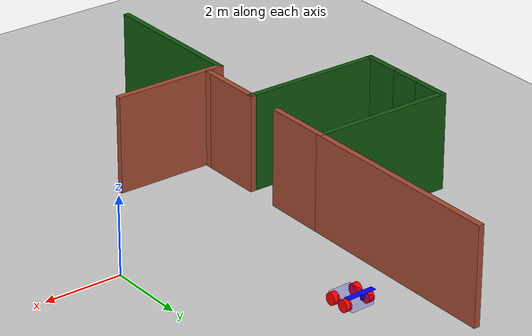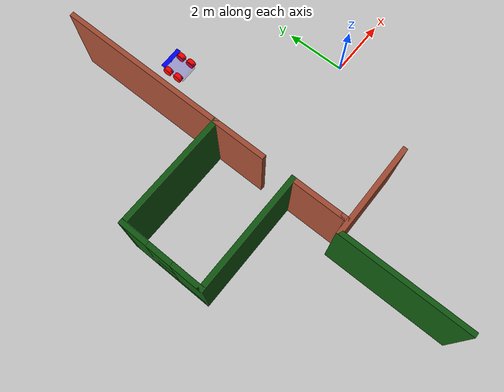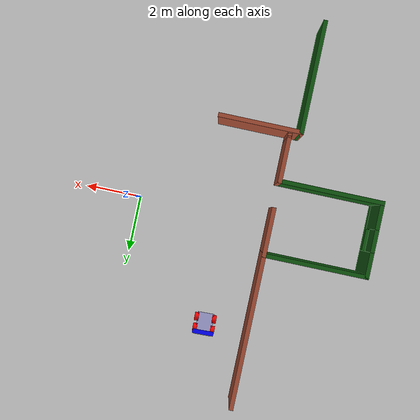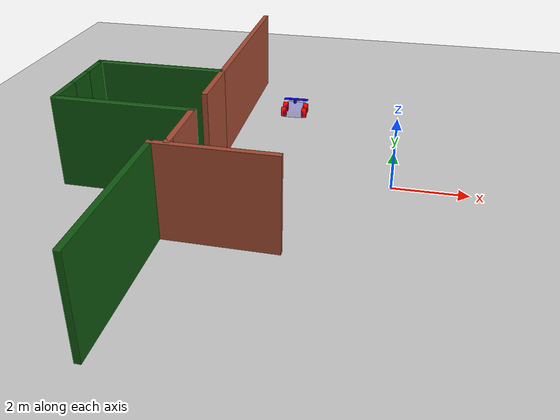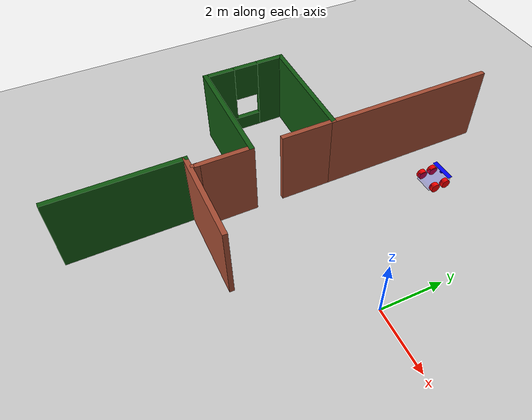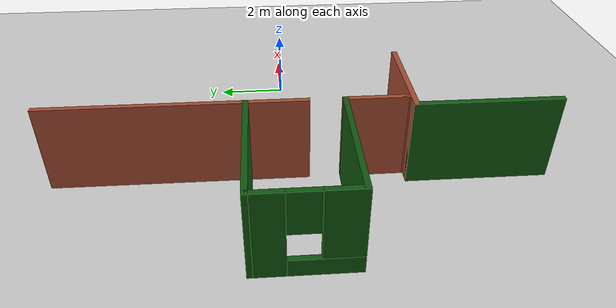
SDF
<sdf version="1.6">
 <world name="default">
  <model name="ground_plane">
   <static>1</static>
   <link name="link">
    <collision name="collision">
     <geometry><plane><normal>0 0 1</normal><size>100 100</size></plane></geometry>
     <surface>
      <contact><collide_bitmask>65535</collide_bitmask></contact>
      <friction><ode><mu>100</mu><mu2>50</mu2></ode></friction>
     </surface>
    </collision>
    <visual name="visual">
     <cast_shadows>0</cast_shadows>
     <geometry><plane><normal>0 0 1</normal><size>100 100</size></plane></geometry>
     <material>
      <script><uri>file://media/materials/scripts/gazebo.material</uri><name>Gazebo/Grey</name></script>
     </material>
    </visual>
   </link>
  </model>
  <model name="apartment">
   <link name="Wall_26">
    <pose>-8.56082 0.144415 0 0 0 -1.5708</pose>
    <visual name="Wall_26_Visual_0">
     <pose>-0.908752 0 1.25 0 -0 0</pose>
     <geometry><box><size>0.932496 0.15 2.5</size></box></geometry>
     <material>
      <script><uri>file://media/materials/scripts/gazebo.material</uri><name>Gazebo/Grey</name></script>
      <ambient>0.0627451 0.345098 0.0627451 1</ambient>
     </material>
     <meta><layer>0</layer></meta>
    </visual>
    <visual name="Wall_26_Visual_1">
     <pose>0.466248 0 0.25 0 -0 0</pose>
     <geometry><box><size>1.8175 0.15 0.5</size></box></geometry>
     <material>
      <script><uri>file://media/materials/scripts/gazebo.material</uri><name>Gazebo/Grey</name></script>
      <ambient>0.0627451 0.345098 0.0627451 1</ambient>
     </material>
     <meta><layer>0</layer></meta>
    </visual>
    <visual name="Wall_26_Visual_2">
     <pose>0.866248 0 1.5 0 -0 0</pose>
     <geometry><box><size>1.0175 0.15 2</size></box></geometry>
     <material>
      <script><uri>file://media/materials/scripts/gazebo.material</uri><name>Gazebo/Grey</name></script>
      <ambient>0.0627451 0.345098 0.0627451 1</ambient>
     </material>
     <meta><layer>0</layer></meta>
    </visual>
    <visual name="Wall_26_Visual_3">
     <pose>-0.042504 0 1.9 0 -0 0</pose>
     <geometry><box><size>0.8 0.15 1.2</size></box></geometry>
     <material>
      <script><uri>file://media/materials/scripts/gazebo.material</uri><name>Gazebo/Grey</name></script>
      <ambient>0.0627451 0.345098 0.0627451 1</ambient>
     </material>
     <meta><layer>0</layer></meta>
    </visual>
    <collision name="Wall_26_Collision_0">
     <pose>-0.908752 0 1.25 0 -0 0</pose>
     <geometry><box><size>0.932496 0.15 2.5</size></box></geometry>
     <surface>
      <friction>
       <ode><mu>1</mu><mu2>1</mu2><fdir1>0 0 0</fdir1><slip1>0</slip1><slip2>0</slip2></ode>
       <torsional>
        <coefficient>1</coefficient>
        <patch_radius>0</patch_radius>
        <surface_radius>0</surface_radius>
        <use_patch_radius>1</use_patch_radius>
        <ode><slip>0</slip></ode>
       </torsional>
      </friction>
      <bounce><restitution_coefficient>0</restitution_coefficient><threshold>1e+06</threshold></bounce>
      <contact>
       <collide_without_contact>0</collide_without_contact>
       <collide_without_contact_bitmask>1</collide_without_contact_bitmask>
       <collide_bitmask>1</collide_bitmask>
       <ode>
        <soft_cfm>0</soft_cfm>
        <soft_erp>0.2</soft_erp>
        <kp>1e+13</kp>
        <kd>1</kd>
        <max_vel>0.01</max_vel>
        <min_depth>0</min_depth>
       </ode>
       <bullet>
        <split_impulse>1</split_impulse>
        <split_impulse_penetration_threshold>-0.01</split_impulse_penetration_threshold>
        <soft_cfm>0</soft_cfm>
        <soft_erp>0.2</soft_erp>
        <kp>1e+13</kp>
        <kd>1</kd>
       </bullet>
      </contact>
     </surface>
    </collision>
    <collision name="Wall_26_Collision_1">
     <pose>0.466248 0 0.25 0 -0 0</pose>
     <geometry><box><size>1.8175 0.15 0.5</size></box></geometry>
     <surface>
      <friction>
       <ode><mu>1</mu><mu2>1</mu2><fdir1>0 0 0</fdir1><slip1>0</slip1><slip2>0</slip2></ode>
       <torsional>
        <coefficient>1</coefficient>
        <patch_radius>0</patch_radius>
        <surface_radius>0</surface_radius>
        <use_patch_radius>1</use_patch_radius>
        <ode><slip>0</slip></ode>
       </torsional>
      </friction>
      <bounce><restitution_coefficient>0</restitution_coefficient><threshold>1e+06</threshold></bounce>
      <contact>
       <collide_without_contact>0</collide_without_contact>
       <collide_without_contact_bitmask>1</collide_without_contact_bitmask>
       <collide_bitmask>1</collide_bitmask>
       <ode>
        <soft_cfm>0</soft_cfm>
        <soft_erp>0.2</soft_erp>
        <kp>1e+13</kp>
        <kd>1</kd>
        <max_vel>0.01</max_vel>
        <min_depth>0</min_depth>
       </ode>
       <bullet>
        <split_impulse>1</split_impulse>
        <split_impulse_penetration_threshold>-0.01</split_impulse_penetration_threshold>
        <soft_cfm>0</soft_cfm>
        <soft_erp>0.2</soft_erp>
        <kp>1e+13</kp>
        <kd>1</kd>
       </bullet>
      </contact>
     </surface>
    </collision>
    <collision name="Wall_26_Collision_2">
     <pose>0.866248 0 1.5 0 -0 0</pose>
     <geometry><box><size>1.0175 0.15 2</size></box></geometry>
     <surface>
      <friction>
       <ode><mu>1</mu><mu2>1</mu2><fdir1>0 0 0</fdir1><slip1>0</slip1><slip2>0</slip2></ode>
       <torsional>
        <coefficient>1</coefficient>
        <patch_radius>0</patch_radius>
        <surface_radius>0</surface_radius>
        <use_patch_radius>1</use_patch_radius>
        <ode><slip>0</slip></ode>
       </torsional>
      </friction>
      <bounce><restitution_coefficient>0</restitution_coefficient><threshold>1e+06</threshold></bounce>
      <contact>
       <collide_without_contact>0</collide_without_contact>
       <collide_without_contact_bitmask>1</collide_without_contact_bitmask>
       <collide_bitmask>1</collide_bitmask>
       <ode>
        <soft_cfm>0</soft_cfm>
        <soft_erp>0.2</soft_erp>
        <kp>1e+13</kp>
        <kd>1</kd>
        <max_vel>0.01</max_vel>
        <min_depth>0</min_depth>
       </ode>
       <bullet>
        <split_impulse>1</split_impulse>
        <split_impulse_penetration_threshold>-0.01</split_impulse_penetration_threshold>
        <soft_cfm>0</soft_cfm>
        <soft_erp>0.2</soft_erp>
        <kp>1e+13</kp>
        <kd>1</kd>
       </bullet>
      </contact>
     </surface>
    </collision>
    <collision name="Wall_26_Collision_3">
     <pose>-0.042504 0 1.9 0 -0 0</pose>
     <geometry><box><size>0.8 0.15 1.2</size></box></geometry>
     <surface>
      <friction>
       <ode><mu>1</mu><mu2>1</mu2><fdir1>0 0 0</fdir1><slip1>0</slip1><slip2>0</slip2></ode>
       <torsional>
        <coefficient>1</coefficient>
        <patch_radius>0</patch_radius>
        <surface_radius>0</surface_radius>
        <use_patch_radius>1</use_patch_radius>
        <ode><slip>0</slip></ode>
       </torsional>
      </friction>
      <bounce><restitution_coefficient>0</restitution_coefficient><threshold>1e+06</threshold></bounce>
      <contact>
       <collide_without_contact>0</collide_without_contact>
       <collide_without_contact_bitmask>1</collide_without_contact_bitmask>
       <collide_bitmask>1</collide_bitmask>
       <ode>
        <soft_cfm>0</soft_cfm>
        <soft_erp>0.2</soft_erp>
        <kp>1e+13</kp>
        <kd>1</kd>
        <max_vel>0.01</max_vel>
        <min_depth>0</min_depth>
       </ode>
       <bullet>
        <split_impulse>1</split_impulse>
        <split_impulse_penetration_threshold>-0.01</split_impulse_penetration_threshold>
        <soft_cfm>0</soft_cfm>
        <soft_erp>0.2</soft_erp>
        <kp>1e+13</kp>
        <kd>1</kd>
       </bullet>
      </contact>
     </surface>
    </collision>
   </link>
   <link name="Wall_27">
    <pose>-6.76082 -1.15559 0 0 -0 0</pose>
    <visual name="Wall_27_Visual">
     <pose>0 0 1.25 0 -0 0</pose>
     <geometry><box><size>3.75 0.15 2.5</size></box></geometry>
     <material>
      <script><uri>file://media/materials/scripts/gazebo.material</uri><name>Gazebo/Grey</name></script>
      <ambient>0.0627451 0.345098 0.0627451 1</ambient>
     </material>
     <meta><layer>0</layer></meta>
    </visual>
    <collision name="Wall_27_Collision">
     <pose>0 0 1.25 0 -0 0</pose>
     <geometry><box><size>3.75 0.15 2.5</size></box></geometry>
     <surface>
      <friction>
       <ode><mu>1</mu><mu2>1</mu2><fdir1>0 0 0</fdir1><slip1>0</slip1><slip2>0</slip2></ode>
       <torsional>
        <coefficient>1</coefficient>
        <patch_radius>0</patch_radius>
        <surface_radius>0</surface_radius>
        <use_patch_radius>1</use_patch_radius>
        <ode><slip>0</slip></ode>
       </torsional>
      </friction>
      <bounce><restitution_coefficient>0</restitution_coefficient><threshold>1e+06</threshold></bounce>
      <contact>
       <collide_without_contact>0</collide_without_contact>
       <collide_without_contact_bitmask>1</collide_without_contact_bitmask>
       <collide_bitmask>1</collide_bitmask>
       <ode>
        <soft_cfm>0</soft_cfm>
        <soft_erp>0.2</soft_erp>
        <kp>1e+13</kp>
        <kd>1</kd>
        <max_vel>0.01</max_vel>
        <min_depth>0</min_depth>
       </ode>
       <bullet>
        <split_impulse>1</split_impulse>
        <split_impulse_penetration_threshold>-0.01</split_impulse_penetration_threshold>
        <soft_cfm>0</soft_cfm>
        <soft_erp>0.2</soft_erp>
        <kp>1e+13</kp>
        <kd>1</kd>
       </bullet>
      </contact>
     </surface>
    </collision>
   </link>
   <link name="Wall_28">
    <pose>-4.96082 -1.95558 0 0 0 -1.5708</pose>
    <visual name="Wall_28_Visual">
     <pose>0 0 1.25 0 -0 0</pose>
     <geometry><box><size>1.75 0.15 2.5</size></box></geometry>
     <material>
      <script><uri>file://media/materials/scripts/gazebo.material</uri><name>Gazebo/Bricks</name></script>
      <ambient>1 1 1 1</ambient>
     </material>
     <meta><layer>0</layer></meta>
    </visual>
    <collision name="Wall_28_Collision">
     <pose>0 0 1.25 0 -0 0</pose>
     <geometry><box><size>1.75 0.15 2.5</size></box></geometry>
     <surface>
      <friction>
       <ode><mu>1</mu><mu2>1</mu2><fdir1>0 0 0</fdir1><slip1>0</slip1><slip2>0</slip2></ode>
       <torsional>
        <coefficient>1</coefficient>
        <patch_radius>0</patch_radius>
        <surface_radius>0</surface_radius>
        <use_patch_radius>1</use_patch_radius>
        <ode><slip>0</slip></ode>
       </torsional>
      </friction>
      <bounce><restitution_coefficient>0</restitution_coefficient><threshold>1e+06</threshold></bounce>
      <contact>
       <collide_without_contact>0</collide_without_contact>
       <collide_without_contact_bitmask>1</collide_without_contact_bitmask>
       <collide_bitmask>1</collide_bitmask>
       <ode>
        <soft_cfm>0</soft_cfm>
        <soft_erp>0.2</soft_erp>
        <kp>1e+13</kp>
        <kd>1</kd>
        <max_vel>0.01</max_vel>
        <min_depth>0</min_depth>
       </ode>
       <bullet>
        <split_impulse>1</split_impulse>
        <split_impulse_penetration_threshold>-0.01</split_impulse_penetration_threshold>
        <soft_cfm>0</soft_cfm>
        <soft_erp>0.2</soft_erp>
        <kp>1e+13</kp>
        <kd>1</kd>
       </bullet>
      </contact>
     </surface>
    </collision>
   </link>
   <link name="Wall_30">
    <pose>-4.96082 -2.80559 0 0 0 -1.5708</pose>
    <visual name="Wall_30_Visual">
     <pose>0 0 1.25 0 -0 0</pose>
     <geometry><box><size>0.25 0.15 2.5</size></box></geometry>
     <material>
      <script><uri>file://media/materials/scripts/gazebo.material</uri><name>Gazebo/Bricks</name></script>
      <ambient>1 1 1 1</ambient>
     </material>
     <meta><layer>0</layer></meta>
    </visual>
    <collision name="Wall_30_Collision">
     <pose>0 0 1.25 0 -0 0</pose>
     <geometry><box><size>0.25 0.15 2.5</size></box></geometry>
     <surface>
      <friction>
       <ode><mu>1</mu><mu2>1</mu2><fdir1>0 0 0</fdir1><slip1>0</slip1><slip2>0</slip2></ode>
       <torsional>
        <coefficient>1</coefficient>
        <patch_radius>0</patch_radius>
        <surface_radius>0</surface_radius>
        <use_patch_radius>1</use_patch_radius>
        <ode><slip>0</slip></ode>
       </torsional>
      </friction>
      <bounce><restitution_coefficient>0</restitution_coefficient><threshold>1e+06</threshold></bounce>
      <contact>
       <collide_without_contact>0</collide_without_contact>
       <collide_without_contact_bitmask>1</collide_without_contact_bitmask>
       <collide_bitmask>1</collide_bitmask>
       <ode>
        <soft_cfm>0</soft_cfm>
        <soft_erp>0.2</soft_erp>
        <kp>1e+13</kp>
        <kd>1</kd>
        <max_vel>0.01</max_vel>
        <min_depth>0</min_depth>
       </ode>
       <bullet>
        <split_impulse>1</split_impulse>
        <split_impulse_penetration_threshold>-0.01</split_impulse_penetration_threshold>
        <soft_cfm>0</soft_cfm>
        <soft_erp>0.2</soft_erp>
        <kp>1e+13</kp>
        <kd>1</kd>
       </bullet>
      </contact>
     </surface>
    </collision>
   </link>
   <link name="Wall_32">
    <pose>-6.76082 1.44442 0 0 -0 0</pose>
    <visual name="Wall_32_Visual">
     <pose>0 0 1.25 0 -0 0</pose>
     <geometry><box><size>3.75 0.15 2.5</size></box></geometry>
     <material>
      <script><uri>file://media/materials/scripts/gazebo.material</uri><name>Gazebo/Grey</name></script>
      <ambient>0.0627451 0.345098 0.0627451 1</ambient>
     </material>
     <meta><layer>0</layer></meta>
    </visual>
    <collision name="Wall_32_Collision">
     <pose>0 0 1.25 0 -0 0</pose>
     <geometry><box><size>3.75 0.15 2.5</size></box></geometry>
     <surface>
      <friction>
       <ode><mu>1</mu><mu2>1</mu2><fdir1>0 0 0</fdir1><slip1>0</slip1><slip2>0</slip2></ode>
       <torsional>
        <coefficient>1</coefficient>
        <patch_radius>0</patch_radius>
        <surface_radius>0</surface_radius>
        <use_patch_radius>1</use_patch_radius>
        <ode><slip>0</slip></ode>
       </torsional>
      </friction>
      <bounce><restitution_coefficient>0</restitution_coefficient><threshold>1e+06</threshold></bounce>
      <contact>
       <collide_without_contact>0</collide_without_contact>
       <collide_without_contact_bitmask>1</collide_without_contact_bitmask>
       <collide_bitmask>1</collide_bitmask>
       <ode>
        <soft_cfm>0</soft_cfm>
        <soft_erp>0.2</soft_erp>
        <kp>1e+13</kp>
        <kd>1</kd>
        <max_vel>0.01</max_vel>
        <min_depth>0</min_depth>
       </ode>
       <bullet>
        <split_impulse>1</split_impulse>
        <split_impulse_penetration_threshold>-0.01</split_impulse_penetration_threshold>
        <soft_cfm>0</soft_cfm>
        <soft_erp>0.2</soft_erp>
        <kp>1e+13</kp>
        <kd>1</kd>
       </bullet>
      </contact>
     </surface>
    </collision>
   </link>
   <link name="Wall_39">
    <pose>-4.96082 0.644415 0 0 0 -1.5708</pose>
    <visual name="Wall_39_Visual">
     <pose>0 0 1.25 0 -0 0</pose>
     <geometry><box><size>1.75 0.15 2.5</size></box></geometry>
     <material>
      <script><uri>file://media/materials/scripts/gazebo.material</uri><name>Gazebo/Bricks</name></script>
      <ambient>1 1 1 1</ambient>
     </material>
     <meta><layer>0</layer></meta>
    </visual>
    <collision name="Wall_39_Collision">
     <pose>0 0 1.25 0 -0 0</pose>
     <geometry><box><size>1.75 0.15 2.5</size></box></geometry>
     <surface>
      <friction>
       <ode><mu>1</mu><mu2>1</mu2><fdir1>0 0 0</fdir1><slip1>0</slip1><slip2>0</slip2></ode>
       <torsional>
        <coefficient>1</coefficient>
        <patch_radius>0</patch_radius>
        <surface_radius>0</surface_radius>
        <use_patch_radius>1</use_patch_radius>
        <ode><slip>0</slip></ode>
       </torsional>
      </friction>
      <bounce><restitution_coefficient>0</restitution_coefficient><threshold>1e+06</threshold></bounce>
      <contact>
       <collide_without_contact>0</collide_without_contact>
       <collide_without_contact_bitmask>1</collide_without_contact_bitmask>
       <collide_bitmask>1</collide_bitmask>
       <ode>
        <soft_cfm>0</soft_cfm>
        <soft_erp>0.2</soft_erp>
        <kp>1e+13</kp>
        <kd>1</kd>
        <max_vel>0.01</max_vel>
        <min_depth>0</min_depth>
       </ode>
       <bullet>
        <split_impulse>1</split_impulse>
        <split_impulse_penetration_threshold>-0.01</split_impulse_penetration_threshold>
        <soft_cfm>0</soft_cfm>
        <soft_erp>0.2</soft_erp>
        <kp>1e+13</kp>
        <kd>1</kd>
       </bullet>
      </contact>
     </surface>
    </collision>
   </link>
   <link name="Wall_41">
    <pose>-4.96082 4.11942 0 0 -0 1.5708</pose>
    <visual name="Wall_41_Visual">
     <pose>0 0 1.25 0 -0 0</pose>
     <geometry><box><size>5.5 0.15 2.5</size></box></geometry>
     <material>
      <script><uri>file://media/materials/scripts/gazebo.material</uri><name>Gazebo/Bricks</name></script>
      <ambient>1 1 1 1</ambient>
     </material>
     <meta><layer>0</layer></meta>
    </visual>
    <collision name="Wall_41_Collision">
     <pose>0 0 1.25 0 -0 0</pose>
     <geometry><box><size>5.5 0.15 2.5</size></box></geometry>
     <surface>
      <friction>
       <ode><mu>1</mu><mu2>1</mu2><fdir1>0 0 0</fdir1><slip1>0</slip1><slip2>0</slip2></ode>
       <torsional>
        <coefficient>1</coefficient>
        <patch_radius>0</patch_radius>
        <surface_radius>0</surface_radius>
        <use_patch_radius>1</use_patch_radius>
        <ode><slip>0</slip></ode>
       </torsional>
      </friction>
      <bounce><restitution_coefficient>0</restitution_coefficient><threshold>1e+06</threshold></bounce>
      <contact>
       <collide_without_contact>0</collide_without_contact>
       <collide_without_contact_bitmask>1</collide_without_contact_bitmask>
       <collide_bitmask>1</collide_bitmask>
       <ode>
        <soft_cfm>0</soft_cfm>
        <soft_erp>0.2</soft_erp>
        <kp>1e+13</kp>
        <kd>1</kd>
        <max_vel>0.01</max_vel>
        <min_depth>0</min_depth>
       </ode>
       <bullet>
        <split_impulse>1</split_impulse>
        <split_impulse_penetration_threshold>-0.01</split_impulse_penetration_threshold>
        <soft_cfm>0</soft_cfm>
        <soft_erp>0.2</soft_erp>
        <kp>1e+13</kp>
        <kd>1</kd>
       </bullet>
      </contact>
     </surface>
    </collision>
   </link>
   <link name="Wall_8">
    <pose>-5.33918 -4.86942 0 0 -0 1.5708</pose>
    <visual name="Wall_8_Visual">
     <pose>0 0 1.25 0 -0 0</pose>
     <geometry><box><size>4 0.15 2.5</size></box></geometry>
     <material>
      <script><uri>file://media/materials/scripts/gazebo.material</uri><name>Gazebo/Grey</name></script>
      <ambient>0.0627451 0.352941 0.0627451 1</ambient>
     </material>
     <meta><layer>0</layer></meta>
    </visual>
    <collision name="Wall_8_Collision">
     <pose>0 0 1.25 0 -0 0</pose>
     <geometry><box><size>4 0.15 2.5</size></box></geometry>
     <surface>
      <friction>
       <ode><mu>1</mu><mu2>1</mu2><fdir1>0 0 0</fdir1><slip1>0</slip1><slip2>0</slip2></ode>
       <torsional>
        <coefficient>1</coefficient>
        <patch_radius>0</patch_radius>
        <surface_radius>0</surface_radius>
        <use_patch_radius>1</use_patch_radius>
        <ode><slip>0</slip></ode>
       </torsional>
      </friction>
      <bounce><restitution_coefficient>0</restitution_coefficient><threshold>1e+06</threshold></bounce>
      <contact>
       <collide_without_contact>0</collide_without_contact>
       <collide_without_contact_bitmask>1</collide_without_contact_bitmask>
       <collide_bitmask>1</collide_bitmask>
       <ode>
        <soft_cfm>0</soft_cfm>
        <soft_erp>0.2</soft_erp>
        <kp>1e+13</kp>
        <kd>1</kd>
        <max_vel>0.01</max_vel>
        <min_depth>0</min_depth>
       </ode>
       <bullet>
        <split_impulse>1</split_impulse>
        <split_impulse_penetration_threshold>-0.01</split_impulse_penetration_threshold>
        <soft_cfm>0</soft_cfm>
        <soft_erp>0.2</soft_erp>
        <kp>1e+13</kp>
        <kd>1</kd>
       </bullet>
      </contact>
     </surface>
    </collision>
   </link>
   <link name="Wall_9">
    <pose>-3.91418 -2.94442 0 0 -0 0</pose>
    <visual name="Wall_9_Visual">
     <pose>0 0 1.25 0 -0 0</pose>
     <geometry><box><size>3 0.15 2.5</size></box></geometry>
     <material>
      <script><uri>file://media/materials/scripts/gazebo.material</uri><name>Gazebo/Bricks</name></script>
      <ambient>1 1 1 1</ambient>
     </material>
     <meta><layer>0</layer></meta>
    </visual>
    <collision name="Wall_9_Collision">
     <pose>0 0 1.25 0 -0 0</pose>
     <geometry><box><size>3 0.15 2.5</size></box></geometry>
     <surface>
      <friction>
       <ode><mu>1</mu><mu2>1</mu2><fdir1>0 0 0</fdir1><slip1>0</slip1><slip2>0</slip2></ode>
       <torsional>
        <coefficient>1</coefficient>
        <patch_radius>0</patch_radius>
        <surface_radius>0</surface_radius>
        <use_patch_radius>1</use_patch_radius>
        <ode><slip>0</slip></ode>
       </torsional>
      </friction>
      <bounce><restitution_coefficient>0</restitution_coefficient><threshold>1e+06</threshold></bounce>
      <contact>
       <collide_without_contact>0</collide_without_contact>
       <collide_without_contact_bitmask>1</collide_without_contact_bitmask>
       <collide_bitmask>1</collide_bitmask>
       <ode>
        <soft_cfm>0</soft_cfm>
        <soft_erp>0.2</soft_erp>
        <kp>1e+13</kp>
        <kd>1</kd>
        <max_vel>0.01</max_vel>
        <min_depth>0</min_depth>
       </ode>
       <bullet>
        <split_impulse>1</split_impulse>
        <split_impulse_penetration_threshold>-0.01</split_impulse_penetration_threshold>
        <soft_cfm>0</soft_cfm>
        <soft_erp>0.2</soft_erp>
        <kp>1e+13</kp>
        <kd>1</kd>
       </bullet>
      </contact>
     </surface>
    </collision>
   </link>
   <static>1</static>
   <pose>0.16206 -0.380109 0 0 -0 0</pose>
  </model>
  <model name="bot_0">
   <link name="link_0">
    <inertial>
     <mass>1</mass>
     <inertia>
      <ixx>0.0333333</ixx>
      <ixy>0</ixy>
      <ixz>0</ixz>
      <iyy>0.0566667</iyy>
      <iyz>0</iyz>
      <izz>0.0833333</izz>
     </inertia>
    </inertial>
    <pose>-0.024426 -0.001593 0 0 -0 0</pose>
    <visual name="visual">
     <geometry><box><size>0.8 0.6 0.2</size></box></geometry>
     <material>
      <lighting>1</lighting>
      <script><uri>file://media/materials/scripts/gazebo.material</uri><name>Gazebo/Grey</name></script>
      <shader type="vertex"><normal_map>__default__</normal_map></shader>
      <ambient>0 0 1 0.2</ambient>
      <diffuse>0.7 0.7 0.7 1</diffuse>
      <specular>0.01 0.01 0.01 1</specular>
      <emissive>0 0 0 1</emissive>
     </material>
    </visual>
    <collision name="collision">
     <geometry><box><size>0.8 0.6 0.2</size></box></geometry>
     <surface>
      <friction>
       <ode><mu>1</mu><mu2>1</mu2><fdir1>0 0 0</fdir1><slip1>0</slip1><slip2>0</slip2></ode>
       <torsional>
        <coefficient>1</coefficient>
        <patch_radius>0</patch_radius>
        <surface_radius>0</surface_radius>
        <use_patch_radius>1</use_patch_radius>
        <ode><slip>0</slip></ode>
       </torsional>
      </friction>
      <bounce><restitution_coefficient>0</restitution_coefficient><threshold>1e+06</threshold></bounce>
      <contact>
       <collide_without_contact>0</collide_without_contact>
       <collide_without_contact_bitmask>1</collide_without_contact_bitmask>
       <collide_bitmask>1</collide_bitmask>
       <ode>
        <soft_cfm>0</soft_cfm>
        <soft_erp>0.2</soft_erp>
        <kp>1e+13</kp>
        <kd>1</kd>
        <max_vel>0.01</max_vel>
        <min_depth>0</min_depth>
       </ode>
       <bullet>
        <split_impulse>1</split_impulse>
        <split_impulse_penetration_threshold>-0.01</split_impulse_penetration_threshold>
        <soft_cfm>0</soft_cfm>
        <soft_erp>0.2</soft_erp>
        <kp>1e+13</kp>
        <kd>1</kd>
       </bullet>
      </contact>
     </surface>
    </collision>
   </link>
   <link name="link_0_0">
    <inertial>
     <mass>0.00155561</mass>
     <inertia>
      <ixx>3.56e-06</ixx>
      <ixy>0</ixy>
      <ixz>0</ixz>
      <iyy>3.56e-06</iyy>
      <iyz>0</iyz>
      <izz>2.19e-06</izz>
     </inertia>
    </inertial>
    <pose>-0.346889 -0.043439 0.16 -0 -1e-06 -1.1e-05</pose>
    <visual name="visual">
     <geometry><cylinder><radius>0.053114</radius><length>0.14</length></cylinder></geometry>
     <material>
      <lighting>1</lighting>
      <script><uri>file://media/materials/scripts/gazebo.material</uri><name>Gazebo/Grey</name></script>
      <emissive>0 0 0 1</emissive>
      <shader type="vertex"><normal_map>__default__</normal_map></shader>
      <ambient>0 0 1 1</ambient>
      <diffuse>0.7 0.7 0.7 1</diffuse>
      <specular>0.01 0.01 0.01 1</specular>
     </material>
    </visual>
    <collision name="collision">
     <geometry><cylinder><radius>0.053114</radius><length>0.137696</length></cylinder></geometry>
     <surface>
      <friction>
       <ode><mu>1</mu><mu2>1</mu2><fdir1>0 0 0</fdir1><slip1>0</slip1><slip2>0</slip2></ode>
       <torsional>
        <coefficient>1</coefficient>
        <patch_radius>0</patch_radius>
        <surface_radius>0</surface_radius>
        <use_patch_radius>1</use_patch_radius>
        <ode><slip>0</slip></ode>
       </torsional>
      </friction>
      <bounce><restitution_coefficient>0</restitution_coefficient><threshold>1e+06</threshold></bounce>
      <contact>
       <collide_without_contact>0</collide_without_contact>
       <collide_without_contact_bitmask>1</collide_without_contact_bitmask>
       <collide_bitmask>1</collide_bitmask>
       <ode>
        <soft_cfm>0</soft_cfm>
        <soft_erp>0.2</soft_erp>
        <kp>1e+13</kp>
        <kd>1</kd>
        <max_vel>0.01</max_vel>
        <min_depth>0</min_depth>
       </ode>
       <bullet>
        <split_impulse>1</split_impulse>
        <split_impulse_penetration_threshold>-0.01</split_impulse_penetration_threshold>
        <soft_cfm>0</soft_cfm>
        <soft_erp>0.2</soft_erp>
        <kp>1e+13</kp>
        <kd>1</kd>
       </bullet>
      </contact>
     </surface>
    </collision>
   </link>
   <link name="link_1">
    <inertial>
     <mass>1</mass>
     <inertia><ixx>0.0075</ixx><ixy>0</ixy><ixz>0</ixz><iyy>0.0075</iyy><iyz>0</iyz><izz>0.01125</izz></inertia>
    </inertial>
    <pose>0.2 0.324981 -0 1.5707 -0 0</pose>
    <visual name="visual">
     <geometry><cylinder><radius>0.15</radius><length>0.15</length></cylinder></geometry>
     <material>
      <lighting>1</lighting>
      <script><uri>file://media/materials/scripts/gazebo.material</uri><name>Gazebo/Grey</name></script>
      <shader type="vertex"><normal_map>__default__</normal_map></shader>
      <ambient>1 0 0 0</ambient>
      <diffuse>0.7 0.7 0.7 0</diffuse>
      <specular>0.01 0.01 0.01 1</specular>
      <emissive>0 0 0 1</emissive>
     </material>
    </visual>
    <collision name="collision">
     <geometry><cylinder><radius>0.15</radius><length>0.15</length></cylinder></geometry>
     <surface>
      <friction>
       <ode><mu>1</mu><mu2>1</mu2><fdir1>0 0 0</fdir1><slip1>0</slip1><slip2>0</slip2></ode>
       <torsional>
        <coefficient>1</coefficient>
        <patch_radius>0</patch_radius>
        <surface_radius>0</surface_radius>
        <use_patch_radius>1</use_patch_radius>
        <ode><slip>0</slip></ode>
       </torsional>
      </friction>
      <bounce><restitution_coefficient>0</restitution_coefficient><threshold>1e+06</threshold></bounce>
      <contact>
       <collide_without_contact>0</collide_without_contact>
       <collide_without_contact_bitmask>1</collide_without_contact_bitmask>
       <collide_bitmask>1</collide_bitmask>
       <ode>
        <soft_cfm>0</soft_cfm>
        <soft_erp>0.2</soft_erp>
        <kp>1e+13</kp>
        <kd>1</kd>
        <max_vel>0.01</max_vel>
        <min_depth>0</min_depth>
       </ode>
       <bullet>
        <split_impulse>1</split_impulse>
        <split_impulse_penetration_threshold>-0.01</split_impulse_penetration_threshold>
        <soft_cfm>0</soft_cfm>
        <soft_erp>0.2</soft_erp>
        <kp>1e+13</kp>
        <kd>1</kd>
       </bullet>
      </contact>
     </surface>
    </collision>
   </link>
   <link name="link_1_0">
    <inertial>
     <mass>0.00101746</mass>
     <inertia>
      <ixx>5.04e-05</ixx>
      <ixy>0</ixy>
      <ixz>0</ixz>
      <iyy>2.13e-06</iyy>
      <iyz>0</iyz>
      <izz>5.252e-05</izz>
     </inertia>
    </inertial>
    <pose>-0.32 -0 0.23 -0 -1e-06 -1.1e-05</pose>
    <visual name="visual">
     <geometry><box><size>0.158205 0.770955 0.008351</size></box></geometry>
     <material>
      <lighting>1</lighting>
      <script><uri>file://media/materials/scripts/gazebo.material</uri><name>Gazebo/Grey</name></script>
      <ambient>0 0 1 0</ambient>
      <shader type="vertex"><normal_map>__default__</normal_map></shader>
      <diffuse>0.7 0.7 0.7 1</diffuse>
      <specular>0.01 0.01 0.01 1</specular>
      <emissive>0 0 0 1</emissive>
     </material>
    </visual>
    <collision name="collision">
     <geometry><box><size>0.158205 0.770955 0.008351</size></box></geometry>
     <surface>
      <friction>
       <ode><mu>1</mu><mu2>1</mu2><fdir1>0 0 0</fdir1><slip1>0</slip1><slip2>0</slip2></ode>
       <torsional>
        <coefficient>1</coefficient>
        <patch_radius>0</patch_radius>
        <surface_radius>0</surface_radius>
        <use_patch_radius>1</use_patch_radius>
        <ode><slip>0</slip></ode>
       </torsional>
      </friction>
      <bounce><restitution_coefficient>0</restitution_coefficient><threshold>1e+06</threshold></bounce>
      <contact>
       <collide_without_contact>0</collide_without_contact>
       <collide_without_contact_bitmask>1</collide_without_contact_bitmask>
       <collide_bitmask>1</collide_bitmask>
       <ode>
        <soft_cfm>0</soft_cfm>
        <soft_erp>0.2</soft_erp>
        <kp>1e+13</kp>
        <kd>1</kd>
        <max_vel>0.01</max_vel>
        <min_depth>0</min_depth>
       </ode>
       <bullet>
        <split_impulse>1</split_impulse>
        <split_impulse_penetration_threshold>-0.01</split_impulse_penetration_threshold>
        <soft_cfm>0</soft_cfm>
        <soft_erp>0.2</soft_erp>
        <kp>1e+13</kp>
        <kd>1</kd>
       </bullet>
      </contact>
     </surface>
    </collision>
   </link>
   <link name="link_1_clone">
    <inertial>
     <mass>1</mass>
     <inertia><ixx>0.145833</ixx><ixy>0</ixy><ixz>0</ixz><iyy>0.145833</iyy><iyz>0</iyz><izz>0.125</izz></inertia>
    </inertial>
    <pose>-0.2 0.324981 -0 1.5707 -0 0</pose>
    <visual name="visual">
     <geometry><cylinder><radius>0.15</radius><length>0.15</length></cylinder></geometry>
     <material>
      <lighting>1</lighting>
      <script><uri>file://media/materials/scripts/gazebo.material</uri><name>Gazebo/Grey</name></script>
      <shader type="vertex"><normal_map>__default__</normal_map></shader>
      <ambient>1 0 0 0</ambient>
      <diffuse>0.7 0.7 0.7 0</diffuse>
      <specular>0.01 0.01 0.01 1</specular>
      <emissive>0 0 0 1</emissive>
     </material>
    </visual>
    <collision name="collision">
     <geometry><cylinder><radius>0.15</radius><length>0.15</length></cylinder></geometry>
     <surface>
      <friction>
       <ode><mu>1</mu><mu2>1</mu2><fdir1>0 0 0</fdir1><slip1>0</slip1><slip2>0</slip2></ode>
       <torsional>
        <coefficient>1</coefficient>
        <patch_radius>0</patch_radius>
        <surface_radius>0</surface_radius>
        <use_patch_radius>1</use_patch_radius>
        <ode><slip>0</slip></ode>
       </torsional>
      </friction>
      <bounce><restitution_coefficient>0</restitution_coefficient><threshold>1e+06</threshold></bounce>
      <contact>
       <collide_without_contact>0</collide_without_contact>
       <collide_without_contact_bitmask>1</collide_without_contact_bitmask>
       <collide_bitmask>1</collide_bitmask>
       <ode>
        <soft_cfm>0</soft_cfm>
        <soft_erp>0.2</soft_erp>
        <kp>1e+13</kp>
        <kd>1</kd>
        <max_vel>0.01</max_vel>
        <min_depth>0</min_depth>
       </ode>
       <bullet>
        <split_impulse>1</split_impulse>
        <split_impulse_penetration_threshold>-0.01</split_impulse_penetration_threshold>
        <soft_cfm>0</soft_cfm>
        <soft_erp>0.2</soft_erp>
        <kp>1e+13</kp>
        <kd>1</kd>
       </bullet>
      </contact>
     </surface>
    </collision>
   </link>
   <link name="link_1_clone_0">
    <inertial>
     <mass>1</mass>
     <inertia><ixx>0.145833</ixx><ixy>0</ixy><ixz>0</ixz><iyy>0.145833</iyy><iyz>0</iyz><izz>0.125</izz></inertia>
    </inertial>
    <pose>-0.2 -0.324981 0 1.5707 -0 0</pose>
    <visual name="visual">
     <geometry><cylinder><radius>0.15</radius><length>0.15</length></cylinder></geometry>
     <material>
      <lighting>1</lighting>
      <script><uri>file://media/materials/scripts/gazebo.material</uri><name>Gazebo/Grey</name></script>
      <shader type="vertex"><normal_map>__default__</normal_map></shader>
      <ambient>1 0 0 0</ambient>
      <diffuse>0.7 0.7 0.7 0</diffuse>
      <specular>0.01 0.01 0.01 1</specular>
      <emissive>0 0 0 1</emissive>
     </material>
    </visual>
    <collision name="collision">
     <geometry><cylinder><radius>0.15</radius><length>0.15</length></cylinder></geometry>
     <surface>
      <friction>
       <ode><mu>1</mu><mu2>1</mu2><fdir1>0 0 0</fdir1><slip1>0</slip1><slip2>0</slip2></ode>
       <torsional>
        <coefficient>1</coefficient>
        <patch_radius>0</patch_radius>
        <surface_radius>0</surface_radius>
        <use_patch_radius>1</use_patch_radius>
        <ode><slip>0</slip></ode>
       </torsional>
      </friction>
      <bounce><restitution_coefficient>0</restitution_coefficient><threshold>1e+06</threshold></bounce>
      <contact>
       <collide_without_contact>0</collide_without_contact>
       <collide_without_contact_bitmask>1</collide_without_contact_bitmask>
       <collide_bitmask>1</collide_bitmask>
       <ode>
        <soft_cfm>0</soft_cfm>
        <soft_erp>0.2</soft_erp>
        <kp>1e+13</kp>
        <kd>1</kd>
        <max_vel>0.01</max_vel>
        <min_depth>0</min_depth>
       </ode>
       <bullet>
        <split_impulse>1</split_impulse>
        <split_impulse_penetration_threshold>-0.01</split_impulse_penetration_threshold>
        <soft_cfm>0</soft_cfm>
        <soft_erp>0.2</soft_erp>
        <kp>1e+13</kp>
        <kd>1</kd>
       </bullet>
      </contact>
     </surface>
    </collision>
   </link>
   <link name="link_1_clone_1">
    <inertial>
     <mass>1</mass>
     <inertia><ixx>0.145833</ixx><ixy>0</ixy><ixz>0</ixz><iyy>0.145833</iyy><iyz>0</iyz><izz>0.125</izz></inertia>
    </inertial>
    <pose>0.2 -0.324981 0 1.5707 -0 0</pose>
    <visual name="visual">
     <geometry><cylinder><radius>0.15</radius><length>0.15</length></cylinder></geometry>
     <material>
      <lighting>1</lighting>
      <script><uri>file://media/materials/scripts/gazebo.material</uri><name>Gazebo/Grey</name></script>
      <shader type="vertex"><normal_map>__default__</normal_map></shader>
      <ambient>1 0 0 0</ambient>
      <diffuse>0.7 0.7 0.7 0</diffuse>
      <specular>0.01 0.01 0.01 1</specular>
      <emissive>0 0 0 1</emissive>
     </material>
    </visual>
    <collision name="collision">
     <geometry><cylinder><radius>0.15</radius><length>0.15</length></cylinder></geometry>
     <surface>
      <friction>
       <ode><mu>1</mu><mu2>1</mu2><fdir1>0 0 0</fdir1><slip1>0</slip1><slip2>0</slip2></ode>
       <torsional>
        <coefficient>1</coefficient>
        <patch_radius>0</patch_radius>
        <surface_radius>0</surface_radius>
        <use_patch_radius>1</use_patch_radius>
        <ode><slip>0</slip></ode>
       </torsional>
      </friction>
      <bounce><restitution_coefficient>0</restitution_coefficient><threshold>1e+06</threshold></bounce>
      <contact>
       <collide_without_contact>0</collide_without_contact>
       <collide_without_contact_bitmask>1</collide_without_contact_bitmask>
       <collide_bitmask>1</collide_bitmask>
       <ode>
        <soft_cfm>0</soft_cfm>
        <soft_erp>0.2</soft_erp>
        <kp>1e+13</kp>
        <kd>1</kd>
        <max_vel>0.01</max_vel>
        <min_depth>0</min_depth>
       </ode>
       <bullet>
        <split_impulse>1</split_impulse>
        <split_impulse_penetration_threshold>-0.01</split_impulse_penetration_threshold>
        <soft_cfm>0</soft_cfm>
        <soft_erp>0.2</soft_erp>
        <kp>1e+13</kp>
        <kd>1</kd>
       </bullet>
      </contact>
     </surface>
    </collision>
   </link>
   <joint name="link_0_0_JOINT_2" type="fixed">
    <parent>link_0_0</parent>
    <child>link_1_0</child>
    <physics>
     <ode><limit><cfm>0</cfm><erp>0.2</erp></limit><suspension><cfm>0</cfm><erp>0.2</erp></suspension></ode>
    </physics>
   </joint>
   <joint name="link_0_JOINT_1_0" type="fixed">
    <parent>link_0</parent>
    <child>link_0_0</child>
    <pose>0 0 0 0 -0.03 0</pose>
    <physics>
     <ode><limit><cfm>0</cfm><erp>0.2</erp></limit><suspension><cfm>0</cfm><erp>0.2</erp></suspension></ode>
    </physics>
   </joint>
   <joint name="link_0_JOINT_1" type="revolute">
    <parent>link_0</parent>
    <child>link_1</child>
    <axis>
     <xyz>1 0 0</xyz>
     <use_parent_model_frame>0</use_parent_model_frame>
     <limit>
      <lower>-1.79769e+308</lower>
      <upper>1.79769e+308</upper>
      <effort>-1</effort>
      <velocity>-1</velocity>
     </limit>
     <dynamics>
      <spring_reference>0</spring_reference>
      <spring_stiffness>0</spring_stiffness>
      <damping>0</damping>
      <friction>0</friction>
     </dynamics>
    </axis>
    <physics>
     <ode><limit><cfm>0</cfm><erp>0.2</erp></limit><suspension><cfm>0</cfm><erp>0.2</erp></suspension></ode>
    </physics>
   </joint>
   <joint name="link_0_JOINT_2" type="revolute">
    <parent>link_0</parent>
    <child>link_1_clone_1</child>
    <axis>
     <xyz>1 0 0</xyz>
     <use_parent_model_frame>0</use_parent_model_frame>
     <limit>
      <lower>-1.79769e+308</lower>
      <upper>1.79769e+308</upper>
      <effort>-1</effort>
      <velocity>-1</velocity>
     </limit>
     <dynamics>
      <spring_reference>0</spring_reference>
      <spring_stiffness>0</spring_stiffness>
      <damping>0</damping>
      <friction>0</friction>
     </dynamics>
    </axis>
    <physics>
     <ode><limit><cfm>0</cfm><erp>0.2</erp></limit><suspension><cfm>0</cfm><erp>0.2</erp></suspension></ode>
    </physics>
   </joint>
   <joint name="link_0_JOINT_3" type="revolute">
    <parent>link_0</parent>
    <child>link_1_clone_0</child>
    <axis>
     <xyz>1 0 0</xyz>
     <use_parent_model_frame>0</use_parent_model_frame>
     <limit>
      <lower>-1.79769e+308</lower>
      <upper>1.79769e+308</upper>
      <effort>-1</effort>
      <velocity>-1</velocity>
     </limit>
     <dynamics>
      <spring_reference>0</spring_reference>
      <spring_stiffness>0</spring_stiffness>
      <damping>0</damping>
      <friction>0</friction>
     </dynamics>
    </axis>
    <physics>
     <ode><limit><cfm>0</cfm><erp>0.2</erp></limit><suspension><cfm>0</cfm><erp>0.2</erp></suspension></ode>
    </physics>
   </joint>
   <joint name="link_0_JOINT_4" type="revolute">
    <parent>link_0</parent>
    <child>link_1_clone</child>
    <axis>
     <xyz>1 0 0</xyz>
     <use_parent_model_frame>0</use_parent_model_frame>
     <limit>
      <lower>-1.79769e+308</lower>
      <upper>1.79769e+308</upper>
      <effort>-1</effort>
      <velocity>-1</velocity>
     </limit>
     <dynamics>
      <spring_reference>0</spring_reference>
      <spring_stiffness>0</spring_stiffness>
      <damping>0</damping>
      <friction>0</friction>
     </dynamics>
    </axis>
    <physics>
     <ode><limit><cfm>0</cfm><erp>0.2</erp></limit><suspension><cfm>0</cfm><erp>0.2</erp></suspension></ode>
    </physics>
   </joint>
   <static>0</static>
   <pose>-3.29626 4.03152 0.149995 -1.5e-05 -0 -1.53712</pose>
  </model>
 </world>
</sdf>
